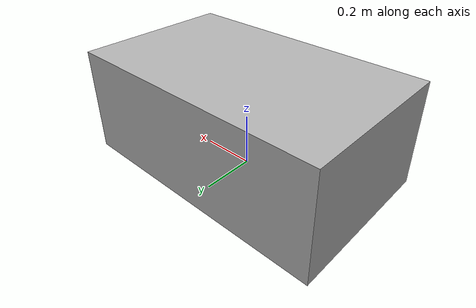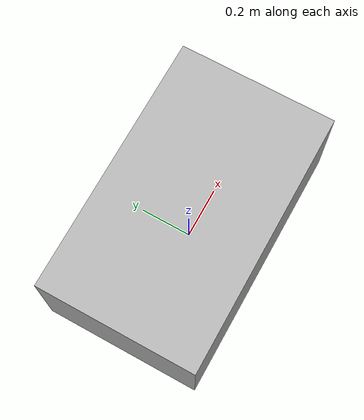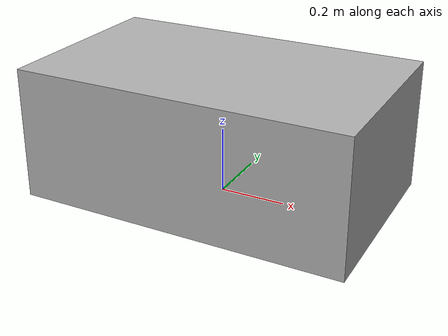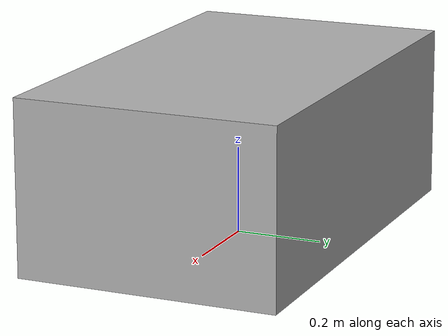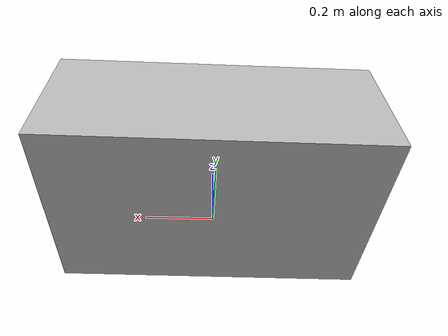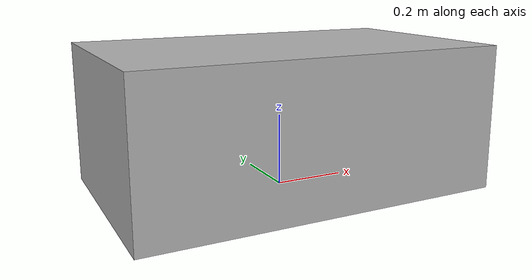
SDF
<?xml version="1.0"?>
<sdf version="1.7">
  <model name="CoffeeTable">
    <static>true</static>
    <link name="link">
      <pose>0 0 0.2 0 0 0</pose>
      <visual name="visual">
        <geometry>
          <box>
            <size>1.0 0.6 0.4</size>
          </box>
        </geometry>
        <material>
          <ambient>0.7 0.7 0.7 1</ambient>
          <diffuse>0.7 0.7 0.7 1</diffuse>
        </material>
      </visual>
      <collision name="collision">
        <geometry>
          <box>
            <size>1.0 0.6 0.4</size>
          </box>
        </geometry>
      </collision>
    </link>
  </model>
</sdf>
